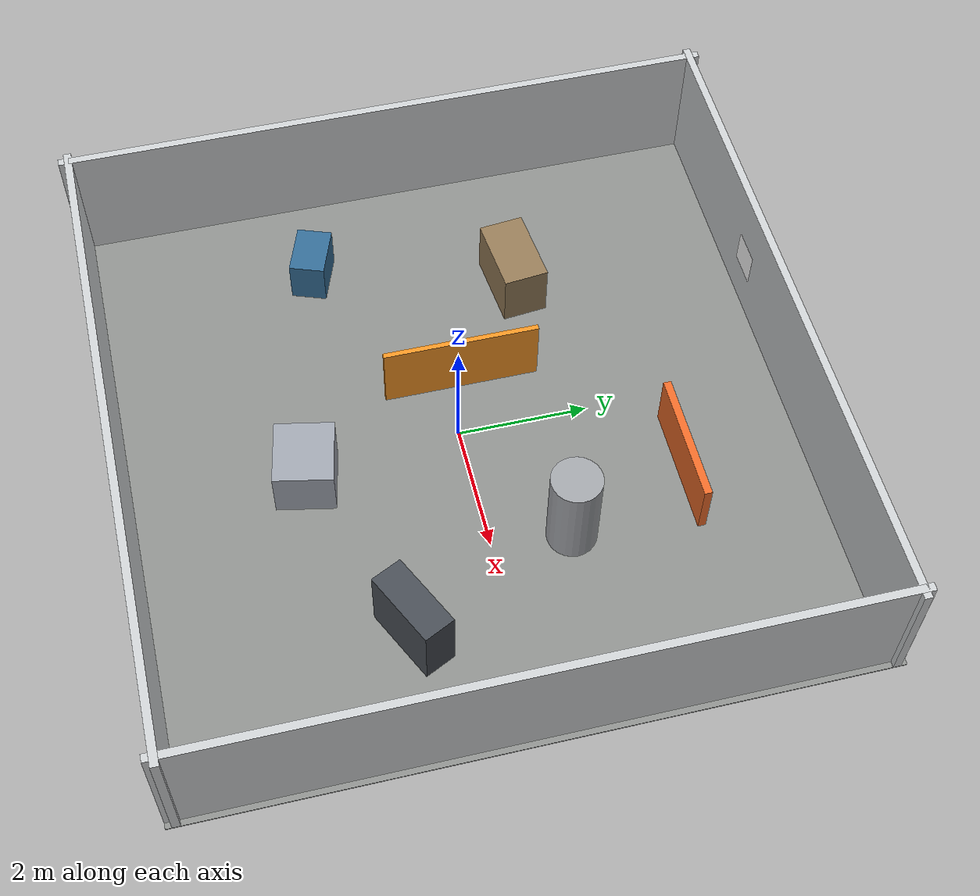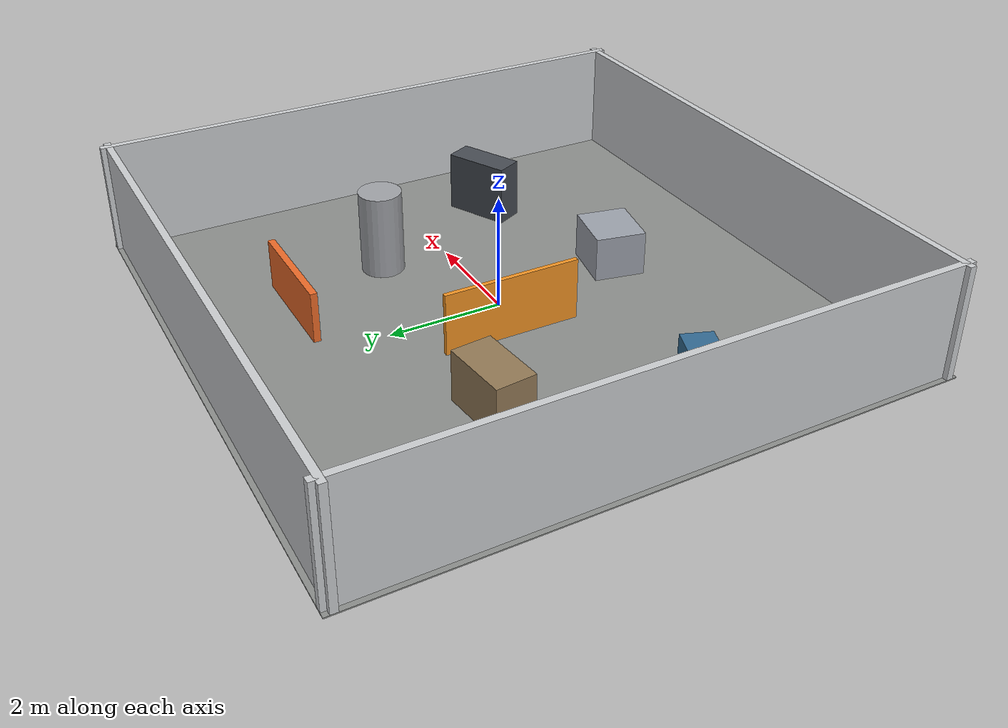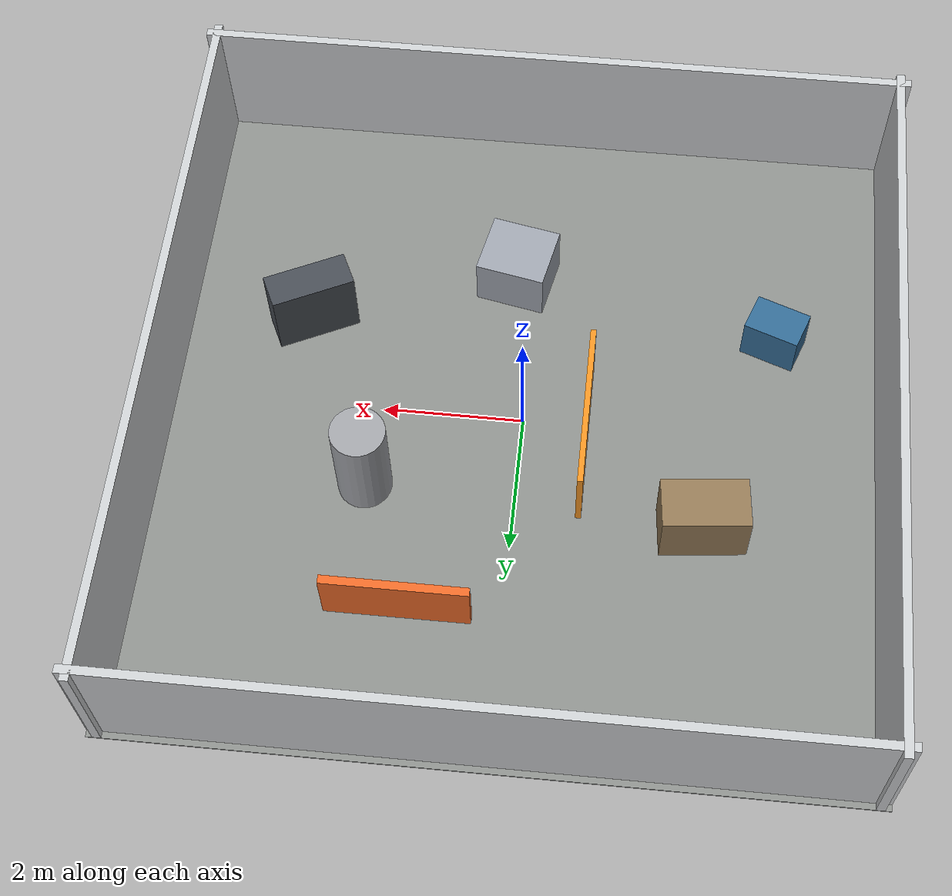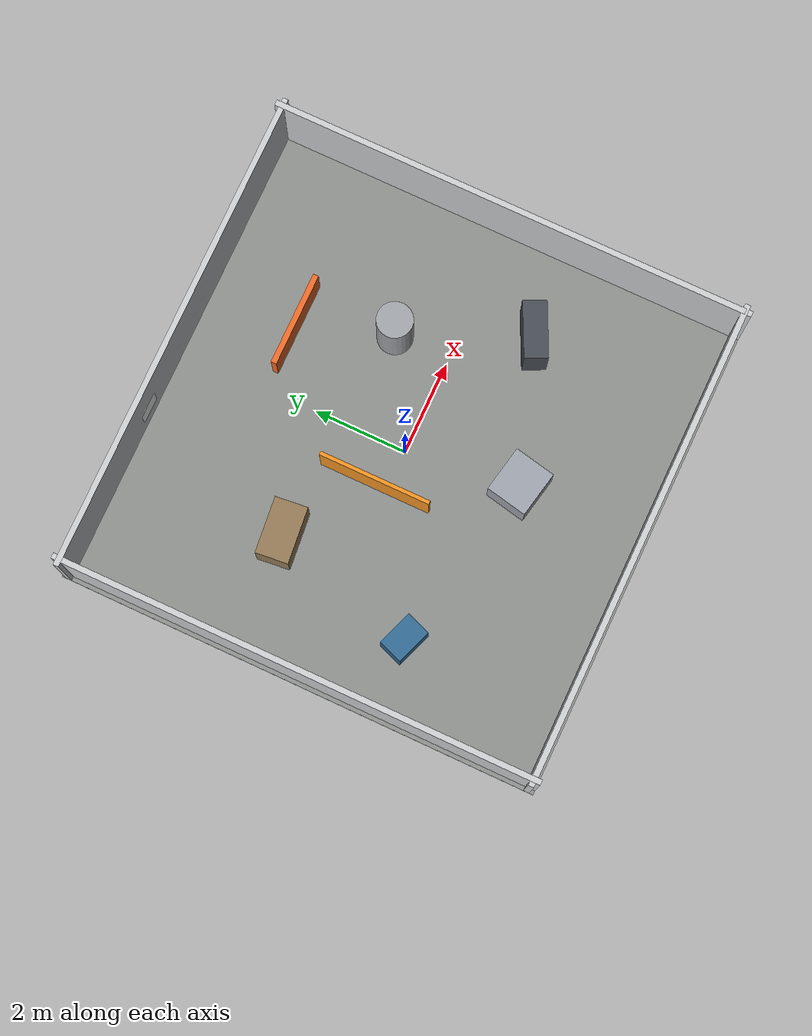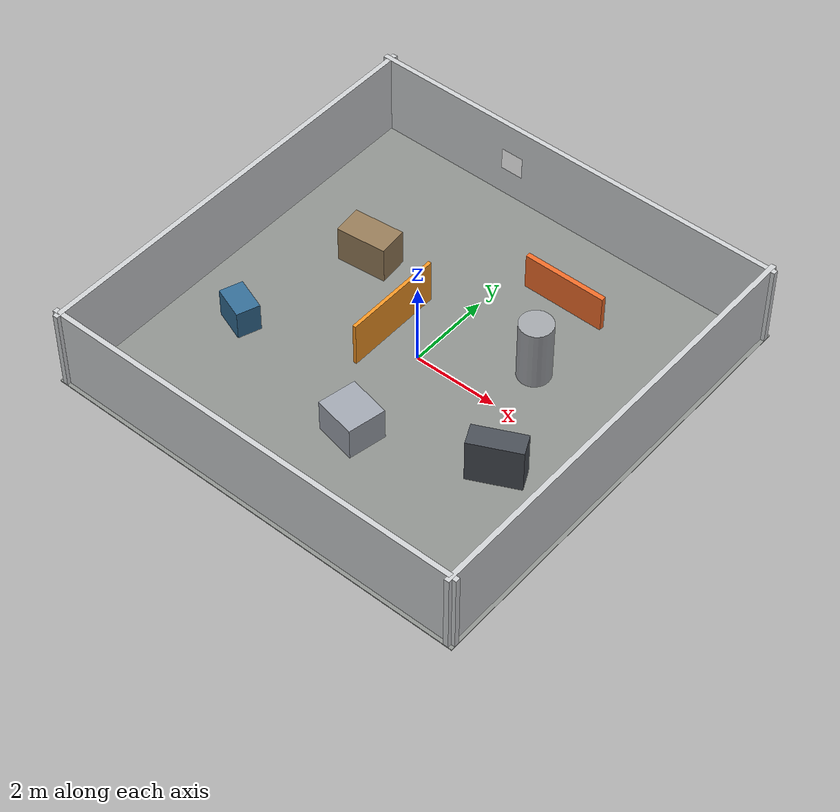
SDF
<?xml version="1.0" ?>
<sdf version="1.6">
    <world name="construction_twin_site">
    <gravity>0 0 -9.8</gravity>

    <light name="site_sun" type="directional">
      <cast_shadows>true</cast_shadows>
      <pose>0 0 8 0 0 0</pose>
      <diffuse>0.8 0.8 0.8 1</diffuse>
      <specular>0.2 0.2 0.2 1</specular>
      <direction>-0.4 0.2 -1</direction>
    </light>

    <model name="floor">
      <static>true</static>
      <pose>0 0 -0.01 0 0 0</pose>
      <link name="link">
        <collision name="collision">
          <geometry>
            <box>
              <size>10.4 10.4 0.02</size>
            </box>
          </geometry>
        </collision>
        <visual name="visual">
          <geometry>
            <box>
              <size>10.4 10.4 0.02</size>
            </box>
          </geometry>
          <material>
            <ambient>0.55 0.56 0.55 1</ambient>
            <diffuse>0.55 0.56 0.55 1</diffuse>
          </material>
        </visual>
      </link>
    </model>

    <scene>
      <ambient>0.48 0.48 0.48 1</ambient>
      <background>0.90 0.92 0.94 1</background>
      <shadows>true</shadows>
    </scene>

    <physics type="ode">
      <real_time_update_rate>1000</real_time_update_rate>
      <max_step_size>0.001</max_step_size>
      <real_time_factor>1.0</real_time_factor>
      <ode>
        <solver>
          <type>quick</type>
          <iters>80</iters>
        </solver>
        <constraints>
          <cfm>0.0</cfm>
          <erp>0.2</erp>
        </constraints>
      </ode>
    </physics>

    <model name="north_wall">
      <static>true</static>
      <pose>0 5.05 1.0 0 0 0</pose>
      <link name="link">
        <collision name="collision"><geometry><box><size>10.4 0.12 2.0</size></box></geometry></collision>
        <visual name="visual"><geometry><box><size>10.4 0.12 2.0</size></box></geometry><material><ambient>0.80 0.81 0.82 1</ambient><diffuse>0.80 0.81 0.82 1</diffuse></material></visual>
      </link>
    </model>
    <model name="south_wall">
      <static>true</static>
      <pose>0 -5.05 1.0 0 0 0</pose>
      <link name="link">
        <collision name="collision"><geometry><box><size>10.4 0.12 2.0</size></box></geometry></collision>
        <visual name="visual"><geometry><box><size>10.4 0.12 2.0</size></box></geometry><material><ambient>0.80 0.81 0.82 1</ambient><diffuse>0.80 0.81 0.82 1</diffuse></material></visual>
      </link>
    </model>
    <model name="east_wall">
      <static>true</static>
      <pose>5.05 0 1.0 0 0 0</pose>
      <link name="link">
        <collision name="collision"><geometry><box><size>0.12 10.4 2.0</size></box></geometry></collision>
        <visual name="visual"><geometry><box><size>0.12 10.4 2.0</size></box></geometry><material><ambient>0.80 0.81 0.82 1</ambient><diffuse>0.80 0.81 0.82 1</diffuse></material></visual>
      </link>
    </model>
    <model name="west_wall">
      <static>true</static>
      <pose>-5.05 0 1.0 0 0 0</pose>
      <link name="link">
        <collision name="collision"><geometry><box><size>0.12 10.4 2.0</size></box></geometry></collision>
        <visual name="visual"><geometry><box><size>0.12 10.4 2.0</size></box></geometry><material><ambient>0.80 0.81 0.82 1</ambient><diffuse>0.80 0.81 0.82 1</diffuse></material></visual>
      </link>
    </model>

    <model name="inspection_column">
      <static>true</static>
      <pose>2.1 1.2 0.75 0 0 0</pose>
      <link name="link">
        <collision name="collision">
          <geometry>
            <cylinder>
              <radius>0.38</radius>
              <length>1.5</length>
            </cylinder>
          </geometry>
        </collision>
        <visual name="visual">
          <geometry>
            <cylinder>
              <radius>0.38</radius>
              <length>1.5</length>
            </cylinder>
          </geometry>
          <material>
            <ambient>0.63 0.64 0.66 1</ambient>
            <diffuse>0.63 0.64 0.66 1</diffuse>
          </material>
        </visual>
      </link>
    </model>

    <model name="wall_apriltag_36h11_0">
      <static>true</static>
      <pose>-1.5 4.93 1.05 1.5708 0 0</pose>
      <link name="link">
        <visual name="apriltag_visual">
          <geometry>
            <plane>
              <normal>0 0 1</normal>
              <size>0.55 0.55</size>
            </plane>
          </geometry>
          <material>
            <script>
              <uri>model://inspection_column/materials/scripts</uri>
              <uri>model://inspection_column/materials/textures</uri>
              <name>InspectionColumn/AprilTag36h11Id0</name>
            </script>
            <ambient>1 1 1 1</ambient>
            <diffuse>1 1 1 1</diffuse>
          </material>
        </visual>
      </link>
    </model>

    <model name="material_stack_west">
      <static>true</static>
      <pose>-2.6 1.5 0.45 0 0 0.1</pose>
      <link name="link">
        <collision name="collision"><geometry><box><size>1.2 0.7 0.9</size></box></geometry></collision>
        <visual name="visual"><geometry><box><size>1.2 0.7 0.9</size></box></geometry><material><ambient>0.58 0.48 0.34 1</ambient><diffuse>0.58 0.48 0.34 1</diffuse></material></visual>
      </link>
    </model>
    <model name="material_stack_south">
      <static>true</static>
      <pose>0.3 -2.4 0.4 0 0 -0.2</pose>
      <link name="link">
        <collision name="collision"><geometry><box><size>1.0 0.9 0.8</size></box></geometry></collision>
        <visual name="visual"><geometry><box><size>1.0 0.9 0.8</size></box></geometry><material><ambient>0.62 0.64 0.68 1</ambient><diffuse>0.62 0.64 0.68 1</diffuse></material></visual>
      </link>
    </model>
    <model name="rebar_cage">
      <static>true</static>
      <pose>3.2 -1.4 0.55 0 0 0.45</pose>
      <link name="link">
        <collision name="collision"><geometry><box><size>1.2 0.5 1.1</size></box></geometry></collision>
        <visual name="visual"><geometry><box><size>1.2 0.5 1.1</size></box></geometry><material><ambient>0.28 0.30 0.33 1</ambient><diffuse>0.28 0.30 0.33 1</diffuse></material></visual>
      </link>
    </model>
    <model name="temporary_fence">
      <static>true</static>
      <pose>-0.9 0.25 0.55 0 0 1.5708</pose>
      <link name="link">
        <collision name="collision"><geometry><box><size>2.4 0.08 1.1</size></box></geometry></collision>
        <visual name="visual"><geometry><box><size>2.4 0.08 1.1</size></box></geometry><material><ambient>0.95 0.58 0.14 1</ambient><diffuse>0.95 0.58 0.14 1</diffuse></material></visual>
      </link>
    </model>
    <model name="site_barrier_north">
      <static>true</static>
      <pose>1.4 3.1 0.45 0 0 0</pose>
      <link name="link">
        <collision name="collision"><geometry><box><size>2.0 0.12 0.9</size></box></geometry></collision>
        <visual name="visual"><geometry><box><size>2.0 0.12 0.9</size></box></geometry><material><ambient>0.93 0.42 0.16 1</ambient><diffuse>0.93 0.42 0.16 1</diffuse></material></visual>
      </link>
    </model>
    <model name="tool_chest">
      <static>true</static>
      <pose>-3.5 -1.6 0.35 0 0 -0.35</pose>
      <link name="link">
        <collision name="collision"><geometry><box><size>0.8 0.55 0.7</size></box></geometry></collision>
        <visual name="visual"><geometry><box><size>0.8 0.55 0.7</size></box></geometry><material><ambient>0.20 0.42 0.58 1</ambient><diffuse>0.20 0.42 0.58 1</diffuse></material></visual>
      </link>
    </model>
  </world>
</sdf>
